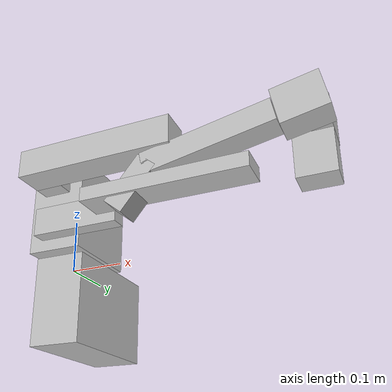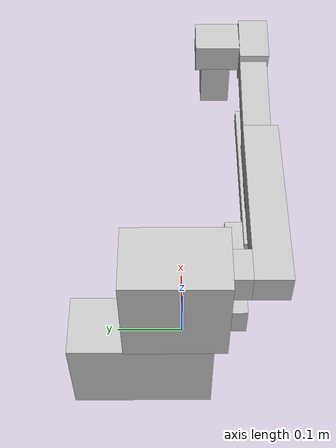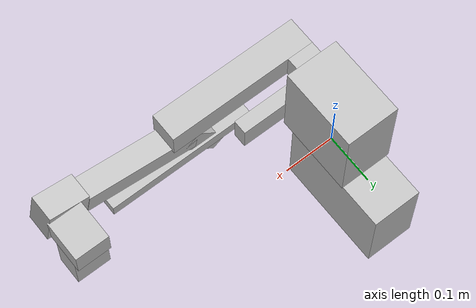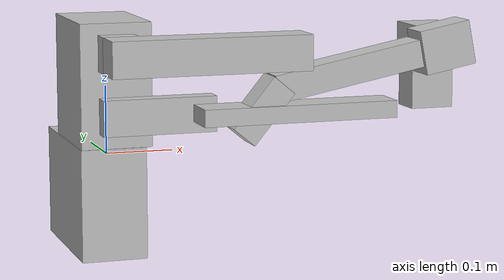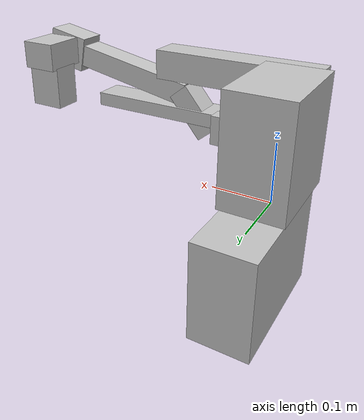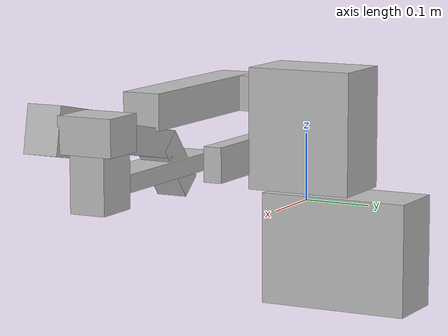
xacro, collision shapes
<?xml version="1.0"?>

<!-- When testing you can run this URDF. Previously I had to comment/uncomment on the macro.xacro, but now I have a standalone file-->
<!-- default values for properties should be "pure" for when its included in another xacro (ie. moveit) -->
<robot xmlns:xacro="http://www.ros.org/wiki/xacro" name="arm_400_v1">

    <xacro:include filename="$(find bam_descriptions)/urdf/common.xacro" />
    <xacro:include filename="$(find bam_descriptions)/urdf/arm_400_v1/arm_400_v1_macro.xacro" />
    <xacro:include filename="$(find bam_descriptions)/urdf/arm_400_v1/arm_400_v1.ros2_control.xacro"/>

    <xacro:arg name="plugin" default="none"/>  <!-- none, mock, gazebo, real -->
    <xacro:property name="plugin" value="$(arg plugin)" />

    <xacro:arg name="controllers_file_path" default=""/>
    <xacro:property name="controllers_file_path" value="$(arg controllers_file_path)"/>

    <xacro:arg name="ros_namespace" default="bam_GPU"/>
    <xacro:property name="ros_namespace" value="$(arg ros_namespace)"/>

    <xacro:arg name="transport_path" default=""/>
    <xacro:property name="transport_path" value="$(arg transport_path)" />

    <xacro:arg name="prefix" default=""/>
    <xacro:property name="prefix" value="$(arg prefix)" />

    <xacro:arg name="reflect" default="1"/>
    <xacro:property name="reflect" value="$(arg reflect)" />

    <xacro:arg name="config" default="default"/>
    <xacro:property name="config" value="$(arg config)" />

    <xacro:arg name="world_xyz" default="0 0 0"/>
    <xacro:property name="world_xyz" value="$(arg world_xyz)"/>

    <xacro:arg name="world_rpy" default="0 0 0"/>
    <xacro:property name="world_rpy" value="$(arg world_rpy)"/>

    <xacro:arg name="base_xyz" default="0 0 0"/>
    <xacro:property name="base_xyz" value="$(arg base_xyz)"/>

    <xacro:arg name="base_rpy" default="0 0 0"/>
    <xacro:property name="base_rpy" value="$(arg base_rpy)"/>

    <xacro:arg name="six_dof_mode" default="false"/>
    <xacro:property name="six_dof_mode" value="$(arg six_dof_mode)"/>

    <xacro:arg name="hand_type" default="none"/>
    <xacro:property name="hand_type" value="$(arg hand_type)"/>

    <!-- Attach to Gazebo World -->
    <link name="world"/>

    <joint name="world_to_base" type="fixed">
        <origin xyz="${world_xyz}" rpy="${world_rpy}"/>
        <parent link="world"/>
        <child link="base_link"/>
    </joint>

    <link name="base_link">
        <xacro:dummy_inertial/>
    </link>

    <joint name="base_link_joint" type="fixed">
        <origin xyz="${base_xyz}" rpy="${base_rpy}"/>
        <parent link="base_link"/>
        <child link="${prefix}base_link_1"/>
    </joint>

    <xacro:arm_400_v1 prefix="${prefix}" reflect="${reflect}" config="${config}" six_dof_mode="${six_dof_mode}"/>

    <xacro:if value="${plugin != 'none'}">
        <xacro:arm_400_v1_ros2_control
        prefix="${prefix}"
        transport_path="${transport_path}"
        plugin="${plugin}"
        hand_type="${hand_type}"
        controllers_file_path="${controllers_file_path}"
        ros_namespace="${ros_namespace}"/>
    </xacro:if>

    <xacro:if value="${hand_type != 'none'}">

        <joint name="hand_joint" type="fixed">
        <origin xyz="0 0 0" rpy="0.0 0.0 0.0"/>
        <parent link="${prefix}eef_frame"/>
        <child link="${prefix}eef_link_1"/>
        </joint>

        <xacro:include filename="$(find bam_descriptions)/urdf/crab_claw_v1/crab_claw_v1_macro.xacro"/>
        <xacro:crab_claw_v1 prefix="${prefix}" reflect="1"/>
    </xacro:if>

</robot>

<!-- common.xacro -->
<robot xmlns:xacro="http://www.ros.org/wiki/xacro">

  <xacro:property name="deg2rad" value="${pi/180}"/>
  <xacro:property name="rev2rad" value="${2*pi}"/>
  <xacro:property name="inch2m" value="${25.4/1000}"/>
  <xacro:property name="mm2m" value="${1/1000}"/>

  <xacro:macro name="cylinder_tube_link" params="name outer_radius inner_radius length density origin_offset mass=-1 material='StoglRobotics/LightGrey'">
    <!-- Length goes along z axis -->

      <link name="${name}">

        <xacro:if value="${mass == -1}">
          <xacro:property name="outer_area" value="${outer_radius * outer_radius * pi}"/>
          <xacro:property name="inner_area" value="${inner_radius * inner_radius * pi}"/>
          <xacro:property name="volume" value="${length * (outer_area - inner_area)}"/>
          <xacro:property name="mass" value="${volume * density}"/>
        </xacro:if>

        <visual>
          <origin xyz="0 0 ${origin_offset}" rpy="0 0 0"/>
          <geometry>
              <cylinder length="${length}" radius="${outer_radius}"/>
          </geometry>
          <material name="${material}"/>
        </visual>

        <collision>
          <origin xyz="0 0 ${origin_offset}" rpy="0 0 0"/>
          <geometry>
              <cylinder length="${length}" radius="${outer_radius}"/>
          </geometry>
        </collision>

        <xacro:cylinder_inertial length="${length}" outer_radius="${outer_radius}" inner_radius="${inner_radius}" mass="${mass}" origin_xyz="0 0 ${origin_offset}"/>

      </link>
  </xacro:macro>

  <xacro:macro name="rectangular_tube_link"
      params="name width length height wall_thickness density origin_offset mass=-1 material='StoglRobotics/LightGrey'"> -->

      <!-- Length goes along y, width goes along x, height goes along z -->

      <!-- length goes from hole to hole, while link_total_length goes from outer edge to outer edge. To center link around holes, add width/2 to both ends -->
      <xacro:if value="${mass == -1}">
        <xacro:property name="outer_area" value="${width * height}"/>
        <xacro:property name="inner_area" value="${(width - 2*wall_thickness) * (height - 2*wall_thickness)}"/>
        <xacro:property name="volume" value="${length * (outer_area - inner_area)}"/>
        <xacro:property name="mass" value="${volume * density}"/>
      </xacro:if>

      <link name="${name}">

        <!-- It may make more sense to have origin in center of thickness, but when you export as cade, usally is done from edge -->
        <visual>
            <origin xyz="0 ${origin_offset} ${height/2}" rpy="0 0 0"/>
            <geometry>
                <box size="${width} ${length} ${height}"/>
            </geometry>
            <material name="${material}"/>
        </visual>

        <collision>
            <origin xyz="0 ${origin_offset} ${height/2}" rpy="0 0 0"/>
            <geometry>
                <box size="${width} ${length} ${height}"/>
            </geometry>
        </collision>

        <xacro:solid_cuboid_inertial width="${width}" height="${length}" depth="${height}" mass="${mass}" origin_xyz="0 ${origin_offset} ${height/2}"/>
      </link>

  </xacro:macro>

  <xacro:macro name="rectangular_plate_link" params="name width length plate_thickness density origin_offset mass=-1 material='StoglRobotics/LightGrey'">
      <!-- Origin offset is usally length/2 or length/2 + width/2 + width/2  -->
      <!-- length goes from hole to hole, while link_total_length goes from outer edge to outer edge. To center link around holes, add width/2 to both ends -->

      <!-- Length goes along y, width goes along x, thickness goes along z -->

      <xacro:if value="${mass == -1}">
        <xacro:property name="volume" value="${length * width * plate_thickness}"/>
        <xacro:property name="mass" value="${volume * density}"/>
      </xacro:if>

      <!-- It may make more sense to have origin in center of thickness, but when you export as cade, usally is done from edge -->
      <link name="${name}">

      <visual>
          <origin xyz="0 ${origin_offset} ${plate_thickness/2}" rpy="0 0 0"/>
          <geometry>
              <box size="${width} ${length} ${plate_thickness}"/>
          </geometry>
          <material name="${material}"/>
      </visual>

      <collision>
          <origin xyz="0 ${origin_offset} ${plate_thickness/2}" rpy="0 0 0"/>
          <geometry>
              <box size="${width} ${length} ${plate_thickness}"/>
          </geometry>
      </collision>

      <xacro:solid_cuboid_inertial width="${width}" height="${length}" depth="${plate_thickness}" mass="${mass}" origin_xyz="0 ${origin_offset} ${plate_thickness/2}"/>
      </link>

  </xacro:macro>

  <!-- https://en.wikipedia.org/wiki/List_of_moments_of_inertia#:~:text=Solid%20cuboid%20of%20width -->
  <!-- Inertia properties for wrist_link, scoped to this macro only -->
  <!-- Width goes along x, height goes along y, depth goes along z -->
  <xacro:macro name="solid_cuboid_inertial" params="width height depth mass origin_xyz">
      <xacro:property name="inertia_xx" value="${(1/12) * mass * (height * height + depth * depth)}"/>
      <xacro:property name="inertia_yy" value="${(1/12) * mass * (width * width + depth * depth)}"/>
      <xacro:property name="inertia_zz" value="${(1/12) * mass * (width * width + height * height)}"/>
      <inertial>
          <origin xyz="${origin_xyz}"/>
          <mass value="${mass}"/>
          <inertia ixx="${inertia_xx}" ixy="0" ixz="0"
                    iyy="${inertia_yy}" iyz="0"
                    izz="${inertia_zz}"/>
      </inertial>
  </xacro:macro>

  <!-- https://en.wikipedia.org/wiki/List_of_moments_of_inertia#:~:text=%5D-,Solid%20cylinder%20of,-radius%20r%2C%20height -->
  <!-- Inertia properties for motor block, scoped to this macro only -->
  <!-- I initally thought it should be outer_radius - inner_radius, but actually a hollow cylinder should have a higher interia! as more mass further away -->
  <xacro:macro name="cylinder_inertial" params="length outer_radius mass origin_xyz inner_radius=0">
      <xacro:property name="inertia_xx" value="${(1/12) * mass * (3*(outer_radius*outer_radius + inner_radius*inner_radius) + length*length)}"/>
      <xacro:property name="inertia_yy" value="${(1/12) * mass * (3*(outer_radius*outer_radius + inner_radius*inner_radius) + length*length)}"/>
      <xacro:property name="inertia_zz" value="${0.5*mass*(outer_radius*outer_radius + inner_radius*inner_radius)}"/>
      <inertial>
          <origin xyz="${origin_xyz}"/>
          <mass value="${mass}"/>
          <inertia ixx="${inertia_xx}" ixy="0" ixz="0"
                    iyy="${inertia_yy}" iyz="0"
                    izz="${inertia_zz}"/>
      </inertial>
  </xacro:macro>

<xacro:macro name="dummy_inertial">
<!-- Super small interia to not effect dynamics and small rviz interia box -->
    <inertial>
        <mass value="0.0001"/>
        <origin xyz="0 0 0" rpy="0 0 0"/>
        <inertia
            ixx="0.001" ixy="0.00001" ixz="0.00001"
            iyy="0.001" iyz="0.00001"
            izz="0.001"/>
    </inertial>
</xacro:macro>

<xacro:macro name="dummy_link">

  <!-- Small visual box so that link can be turned off in rviz -->
  <visual>
    <origin xyz="0 0 0" rpy="0 0 0"/>
    <geometry>
      <box size="0.001 0.001 0.001"/>
    </geometry>
    <material name="transparent_gray">
      <color rgba="0.5 0.5 0.5 0.1"/>
    </material>
  </visual>

  <xacro:dummy_inertial/>

</xacro:macro>

  <material name="StoglRobotics/Violet">
    <color rgba="${102/255} ${46/255} ${145/255} 1.0"/>
    <ambient>1 0 0 1</ambient>
    <diffuse>1 0 0 1</diffuse>
    <specular>0.1 0.1 0.1 1</specular>
    <emissive>0 0 0 0</emissive>
  </material>

  <material name="StoglRobotics/DarkGrey">
    <color rgba="${51/255} ${51/255} ${51/255} 1.0"/>
    <ambient>1 0 0 1</ambient>
    <diffuse>1 0 0 1</diffuse>
    <specular>0.1 0.1 0.1 1</specular>
    <emissive>0 0 0 0</emissive>
  </material>

  <material name="StoglRobotics/LightGrey">
    <color rgba="${194/255} ${194/255} ${194/255} 1.0"/>
    <ambient>1 0 0 1</ambient>
    <diffuse>1 0 0 1</diffuse>
    <specular>0.1 0.1 0.1 1</specular>
    <emissive>0 0 0 0</emissive>
  </material>

  <material name="Ghost">
    <color rgba="${194/255} ${194/255} ${194/255} 0.5"/>
    <ambient>1 0 0 1</ambient>
    <diffuse>1 0 0 1</diffuse>
    <specular>0.1 0.1 0.1 1</specular>
    <emissive>0 0 0 0</emissive>
  </material>

  <material name="Black">
    <color rgba="${0/255} ${0/255} ${0/255} 1"/>
    <ambient>1 0 0 1</ambient>
    <diffuse>1 0 0 1</diffuse>
    <specular>0.1 0.1 0.1 1</specular>
    <emissive>0 0 0 0</emissive>
  </material>

  <material name="White">
    <color rgba="${255/255} ${255/255} ${255/255} 1"/>
    <ambient>1 0 0 1</ambient>
    <diffuse>1 0 0 1</diffuse>
    <specular>0.1 0.1 0.1 1</specular>
    <emissive>0 0 0 0</emissive>
  </material>

  <material name="Red">
    <color rgba="1.0 0.0 0.0 1.0"/>
    <ambient>1 0 0 1</ambient>
    <diffuse>1 0 0 1</diffuse>
    <specular>0.1 0.1 0.1 1</specular>
    <emissive>0 0 0 0</emissive>
  </material>

  <material name="Orange">
    <color rgba="1.0 0.55 0.0 1.0"/>
    <ambient>1 0.5 0 1</ambient>
    <diffuse>1 0.5 0 1</diffuse>
    <specular>0.1 0.1 0.1 1</specular>
    <emissive>0 0 0 0</emissive>
  </material>

  <material name="Yellow">
    <color rgba="1.0 1.0 0.0 1.0"/>
    <ambient>1 1 0 1</ambient>
    <diffuse>1 1 0 1</diffuse>
    <specular>0.1 0.1 0.1 1</specular>
    <emissive>0 0 0 0</emissive>
  </material>

  <material name="Green">
    <color rgba="0.0 1.0 0.0 1.0"/>
    <ambient>0 1 0 1</ambient>
    <diffuse>0 1 0 1</diffuse>
    <specular>0.1 0.1 0.1 1</specular>
    <emissive>0 0 0 0</emissive>
  </material>

  <material name="Blue">
    <color rgba="0.0 0.0 1.0 1.0"/>
    <ambient>0 0 1 1</ambient>
    <diffuse>0 0 1 1</diffuse>
    <specular>0.1 0.1 0.1 1</specular>
    <emissive>0 0 0 0</emissive>
  </material>

  <material name="Indigo">
    <color rgba="0.29 0.0 0.51 1.0"/>
    <ambient>0.25 0 0.45 1</ambient>
    <diffuse>0.25 0 0.45 1</diffuse>
    <specular>0.1 0.1 0.1 1</specular>
    <emissive>0 0 0 0</emissive>
  </material>

  <material name="Violet">
    <color rgba="0.56 0.0 1.0 1.0"/>
    <ambient>0.5 0 1 1</ambient>
    <diffuse>0.5 0 1 1</diffuse>
    <specular>0.1 0.1 0.1 1</specular>
    <emissive>0 0 0 0</emissive>
  </material>

</robot>

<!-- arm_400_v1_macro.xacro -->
<robot xmlns:xacro="http://wiki.ros.org/xacro" name="hybrid_v1_macro">

<!-- if include this here, there may be errors if included agian -->

<!-- When defining the joints, do as few rotations as possible, so its easy to orient back to base_link -->
<!-- Its better to not do any visual rotations, then the CAD values can be read directly, otherwise you may need to switch axises -->

 <!-- Notes on bool vs string https://github.com/ros/xacro/issues/145 -->
 <!-- Using "true"/"false" seemed buggy as sometimes its bool/str instead use config and pass a string -->

    <xacro:macro name="arm_400_v1" params="prefix='' reflect=1 config='default' six_dof_mode=false">

    <!-- I could do this, but it also nice way to make sure URDFs and kinematics are correct -->
    <xacro:property name="theta_elbow_offset" value="${70/180 * pi}"/>
    <xacro:property name="deg2rad" value="${pi/180}"/>
    <xacro:property name="rev2rad" value="${2*pi}"/>

    <!-- Joint Limits -->
    <!-- Use real hardstop values so KDL can optimise correctly -->
    <!-- Check bam_calibration config folder for values -->
    <xacro:property name="J1_upper" value="${90 * deg2rad}"/>
    <xacro:property name="J1_lower" value="${-90 * deg2rad}"/>

    <xacro:property name="J2_upper" value="${0.25 * rev2rad}"/>
    <xacro:property name="J2_lower" value="${-0.4 * rev2rad}"/>

    <!-- Small value so doesn't jam if starts at 0 -->
    <xacro:property name="J3_upper" value="${0 * deg2rad}"/>
    <xacro:property name="J3_lower" value="${-180 * deg2rad}"/>

    <!--shift limits so it makes more sense... with workspace-->
    <xacro:property name="J4_upper" value="${(175-90) * deg2rad}"/>
    <xacro:property name="J4_lower" value="${(-175-90) * deg2rad}"/>

    <xacro:property name="J5_upper" value="${175 * deg2rad}"/>
    <xacro:property name="J5_lower" value="${-175 * deg2rad}"/>

    <xacro:property name="J6_upper" value="${175 * deg2rad}"/>
    <xacro:property name="J6_lower" value="${-175 * deg2rad}"/>

    <xacro:property name="pos_reflect_1_neg_reflect_0" value="${(reflect+1)*0.5}"/>
    <xacro:property name="pos_reflect_0_neg_reflect_1" value="${(reflect-1)*-0.5}"/>

    <!-- SERIAL CHAIN - START -->

        <link name="${prefix}base_link_1">

            <visual>
                <geometry>
                    <mesh filename="package://bam_descriptions/urdf/arm_400_v1/meshes/base.stl"/>
                </geometry>
                <origin xyz="0.0 0.0 0.0" rpy="0 0 0"/>
                <material name="StoglRobotics/LightGrey"/>
            </visual>

            <collision>
                <origin xyz="0.000000 ${reflect * 0.064000} -0.067500" rpy="0 0 0"/>
                <geometry>
                    <box size="0.097000 0.225000 0.165000"/>
                </geometry>
            </collision>

            <inertial>
                <origin xyz="0.042714 0.091472 0.000374"/>
                <mass value="3.072182"/>
                <inertia
                    ixx="9.555000e-03" ixy="-2.573000e-03" ixz="-6.362259e-05"
                    iyy="6.963000e-03" iyz="-1.120315e-05"
                    izz="1.392000e-02"/>
            </inertial>

        </link>

        <joint name="${prefix}joint_1" type="revolute">
            <origin xyz="0 0 ${19/1000}" rpy="0 0 ${pi}"/>
            <parent link="${prefix}base_link_1"/>
            <child link="${prefix}shoulder_link_2"/>
            <axis xyz="0 0 1"/>
            <limit lower="${J1_lower}" upper="${J1_upper}" effort="50.0" velocity="100.0"/>
            <dynamics damping="0.05" friction="0.1"/>
        </joint>

        <!-- Relative to base_link_1, doesn't move with arm -->
        <link name="${prefix}planning_frame"/>

        <joint name="${prefix}joint_planning_frame" type="fixed">
            <origin xyz="0 0 ${156.50/1000}" rpy="0 ${pi/2} ${-pi} "/>
            <parent link="${prefix}base_link_1"/>
            <child link="${prefix}planning_frame"/>
        </joint>

        <link name="${prefix}shoulder_link_2">
            <visual>
                <geometry>
                    <mesh filename="package://bam_descriptions/urdf/arm_400_v1/meshes/shoulder.stl"/>
                </geometry>
                <origin rpy="0 0 ${pi*0}"/>
                <material name="StoglRobotics/LightGrey"/>
            </visual>

            <collision>
                <origin xyz="0.000000 -0.010423 0.090000" rpy="0 0 0"/>
                <geometry>
                    <box size="0.104000 0.158846 0.180000"/>
                </geometry>
            </collision>

            <inertial>
                <origin xyz="0.001942 -0.001158 0.090668"/>
                <mass value="5.469791"/>
                <inertia
                    ixx="2.272000e-02" ixy="7.822000e-04" ixz="-1.589000e-04"
                    iyy="1.876000e-02" iyz="2.229000e-04"
                    izz="1.471000e-02"/>
            </inertial>

        </link>

        <!-- Z offset goes upwards from J1, you can see it similar to the planning_frame, y offset goes perpendicular to axis of rotation to front surface of shoulder -->
        <joint name="${prefix}joint_2" type="revolute">
            <origin xyz="0 ${69/1000} ${137.5/1000}" rpy="${-pi/2} ${reflect*pi/2} 0"/>
            <parent link="${prefix}shoulder_link_2"/>
            <child link="${prefix}L1_link_3"/>
            <!-- Match direction of rotation of UR -->
            <axis xyz="0 0 -1"/>
            <limit lower="${J2_lower}" upper="${J2_upper}" effort="50.0" velocity="100.0"/>
            <dynamics damping="0.05" friction="0.1"/>
        </joint>

        <link name="${prefix}L1_link_3">
            <visual>
                <geometry>
                    <mesh filename="package://bam_descriptions/urdf/arm_400_v1/meshes/L1.stl"/>
                </geometry>
                <origin rpy="0 0 0"/>

                <material name="StoglRobotics/LightGrey"/>
            </visual>

            <collision>
                <origin xyz="0.000000 0.120000 0.057000" rpy="0 0 0"/>
                <geometry>
                    <box size="0.052000 0.292000 0.056000"/>
                </geometry>
            </collision>

            <collision>
                <origin xyz="0.000000 0.000000 0.014500" rpy="0 0 0"/>
                <geometry>
                    <box size="0.052000 0.052000 0.029000"/>
                </geometry>
            </collision>

            <inertial>
                <origin xyz="0.000000 0.107825 0.049767"/>
                <mass value="0.261468"/>
                <inertia
                    ixx="2.119000e-03" ixy="7.117000e-14" ixz="2.088000e-15"
                    iyy="2.967000e-04" iyz="-1.980000e-04"
                    izz="1.931000e-03"/>
            </inertial>

        </link>

        <joint name="${prefix}joint_3" type="revolute">
            <!-- Althought the limits are now lined up, the rotation is still around J2 Z which is point in the same direction, so + reflect*11*deg2rad -->
            <origin xyz="0 ${240/1000} ${(29+85)*0.5/1000}" rpy="${pos_reflect_1_neg_reflect_0 * pi} 0 ${(pos_reflect_1_neg_reflect_0 * pi) + reflect*11*deg2rad}"/>
            <!-- UPDATE YAW with elbow offset -->
            <parent link="${prefix}L1_link_3"/>
            <child link="${prefix}L2_link_4"/>
            <axis xyz="0 0 1"/>
            <limit lower="${J3_lower}" upper="${J3_upper}" effort="50.0" velocity="100.0"/>
            <dynamics damping="0.05" friction="0.1"/>
        </joint>

        <link name="${prefix}L2_link_4">
            <visual>
                <geometry>
                    <mesh filename="package://bam_descriptions/urdf/arm_400_v1/meshes/L2.stl"/>
                </geometry>
                <origin rpy="0 0 0"/>

                <material name="StoglRobotics/LightGrey"/>
            </visual>

            <collision>
                <origin xyz="-0.045781 0.077883 0.000000" rpy="0 0 0"/>
                <geometry>
                    <box size="0.040000 0.224437 0.046000"/>
                </geometry>
            </collision>

            <!-- Manually edited using values from fusion 360 -->
            <collision>
                <origin xyz="-0.071723 -0.059759 0.000000" rpy="0 0 ${(pi/180) * -39.46}"/>
                <geometry>
                    <box size="0.04 0.094 0.046000"/>
                </geometry>
            </collision>

            <inertial>
                <origin xyz="-0.046499 0.033892 0.000000"/>
                <mass value="0.272203"/>
                <inertia
                    ixx="2.392000e-03" ixy="-1.389000e-04" ixz="2.951000e-18"
                    iyy="2.708000e-04" iyz="8.125000e-18"
                    izz="2.422000e-03"/>
            </inertial>
        </link>

        <joint name="${prefix}wrist_fixed_joint" type="fixed">
        <!-- Add reflection here mabye... -->
        <!-- -6mm as 2 less plates-->
            <origin xyz="${-45.7942/1000} ${(190.0905-6)/1000} 0" rpy="${-pi/2} ${pi*pos_reflect_1_neg_reflect_0} 0"/>
            <parent link="${prefix}L2_link_4"/>
            <child link="${prefix}wrist_1_link"/>
        </joint>

        <link name="${prefix}wrist_1_link">
            <visual>
                <geometry>
                    <mesh filename="package://bam_descriptions/urdf/arm_400_v1/meshes/wrist.stl"/>
                </geometry>
                <origin rpy="0 0 0"/>

                <material name="StoglRobotics/LightGrey"/>
            </visual>
            <collision>
                <origin xyz="0.000040 -0.001210 0.046642" rpy="0 0 0"/>
                <geometry>
                    <box size="0.065042 0.050000 0.078000"/>
                </geometry>
            </collision>

            <inertial>
                <origin xyz="0.000040 -0.001210 0.046642"/>
                <mass value="0.222952"/>
                <inertia
                    ixx="9.525372e-05" ixy="3.917645e-07" ixz="9.418994e-07"
                    iyy="1.185000e-04" iyz="1.182385e-06"
                    izz="6.496432e-05"/>
            </inertial>
        </link>

        <joint name="${prefix}joint_4" type="revolute">
        <!-- Add reflection here mabye... -->
            <origin xyz="0 ${13.5/1000} ${51.5/1000}" rpy="${-pi/2} ${-pi/2 + 11*deg2rad} 0"/>
            <parent link="${prefix}wrist_1_link"/>
            <child link="${prefix}wrist_2_link_5"/>
            <axis xyz="0 0 1"/>
            <limit lower="${J4_lower}" upper="${J4_upper}" effort="50.0" velocity="100.0"/>
            <dynamics damping="0.05" friction="0.1"/>
        </joint>

        <link name="${prefix}wrist_2_link_5">
            <visual>
                <geometry>
                    <mesh filename="package://bam_descriptions/urdf/arm_400_v1/meshes/wrist.stl"/>
                </geometry>
                <origin rpy="0 0 0"/>

                <material name="StoglRobotics/LightGrey"/>
            </visual>

            <collision>
                <origin xyz="0.000040 -0.001210 0.046642" rpy="0 0 0"/>
                <geometry>
                    <box size="0.065042 0.050000 0.078000"/>
                </geometry>
            </collision>

            <inertial>
                <origin xyz="0.000040 -0.001210 0.046642"/>
                <mass value="0.222952"/>
                <inertia
                    ixx="9.525372e-05" ixy="3.917645e-07" ixz="9.418994e-07"
                    iyy="1.185000e-04" iyz="1.182385e-06"
                    izz="6.496432e-05"/>
            </inertial>
        </link>

        <joint name="${prefix}joint_5" type="revolute">
        <!-- Add reflection here mabye... -->
            <origin xyz="0 ${13.5/1000} ${51.5/1000}" rpy="${-pi/2} ${reflect * pi} 0"/>
            <!-- changing pitch from - to + changes direction of wrist... -->
            <parent link="${prefix}wrist_2_link_5"/>
            <child link="${prefix}wrist_3_link_6"/>
            <axis xyz="0 0 1"/>
            <limit lower="${J5_lower}" upper="${J5_upper}" effort="50.0" velocity="100.0"/>
            <dynamics damping="0.05" friction="0.1"/>
        </joint>

        <link name="${prefix}wrist_3_link_6">
            <visual>
                <geometry>
                    <mesh filename="package://bam_descriptions/urdf/arm_400_v1/meshes/wrist.stl"/>
                </geometry>
                <origin rpy="0 0 0"/>
                <!-- flip this to change direction -->
                <!-- Nope bad idea! then it all starts to change.. -->

                <material name="StoglRobotics/LightGrey"/>
            </visual>

            <collision>
                <origin xyz="0.000040 -0.001210 0.046642" rpy="0 0 0"/>
                <geometry>
                    <box size="0.065042 0.050000 0.078000"/>
                </geometry>
            </collision>

            <inertial>
                <origin xyz="0.000040 -0.001210 0.046642"/>
                <mass value="0.222952"/>
                <inertia
                    ixx="9.525372e-05" ixy="3.917645e-07" ixz="9.418994e-07"
                    iyy="1.185000e-04" iyz="1.182385e-06"
                    izz="6.496432e-05"/>
            </inertial>

        </link>

        <joint name="${prefix}joint_6" type="revolute">
        <!-- Add reflection here mabye... -->
            <origin xyz="0 ${13.5/1000} ${51.5/1000}" rpy="${-pi/2} 0 0"/>
            <parent link="${prefix}wrist_3_link_6"/>
            <child link="${prefix}eef_frame"/>
            <axis xyz="0 0 1"/>
            <limit lower="${J6_lower}" upper="${J6_upper}" effort="50.0" velocity="100.0"/>
            <dynamics damping="0.05" friction="0.1"/>
        </joint>

        <link name="${prefix}eef_frame">
            <xacro:dummy_inertial/>
        </link>

        <!-- https://github.com/ros-industrial/universal_robot/pull/506/files -->
        <joint name="${prefix}ee_fixed_joint" type="fixed">
            <parent link="${prefix}eef_frame" />
            <child link="${prefix}ee_link" />
            <origin xyz="0 0 0" rpy="0.0 ${-pi/2.0} ${pi/2.0}" />
        </joint>

        <link name="${prefix}ee_link">
            <xacro:dummy_inertial/>
        </link>

    <!-- SERIAL CHAIN - END -->

    <!-- PARALLEL LINKS - START -->

    <xacro:unless value="${six_dof_mode}">
        <joint name="${prefix}joint_c1" type="revolute">
                    <!-- L1 Joint -->

                    <origin xyz="0 ${69/1000} ${50.5/1000}" rpy="${-pi/2} ${reflect*pi/2} 0"/>
                    <parent link="${prefix}shoulder_link_2"/>
                    <child link="${prefix}C1_link"/>
                    <axis xyz="0 0 -1"/>
                    <limit lower="-${pi}" upper="${pi}" effort="50.0" velocity="100.0"/>
                    <dynamics damping="0.05" friction="0.1"/>
                </joint>

        <link name="${prefix}C1_link">
            <visual>
                <geometry>
                    <mesh filename="package://bam_descriptions/urdf/arm_400_v1/meshes/C1.stl"/>
                </geometry>
                <origin rpy="0 0 0"/>

                <material name="StoglRobotics/LightGrey"/>
            </visual>
            <collision>
                <origin xyz="0.002885 0.057527 0.013000" rpy="0 0 0"/>
                <geometry>
                    <box size="0.052000 0.166000 0.028000"/>
                </geometry>
            </collision>

            <inertial>
                <origin xyz="0.002885 0.057527 0.013000"/>
                <mass value="0.112422"/>
                <inertia
                    ixx="2.678000e-04" ixy="-7.943692e-06" ixz="2.790000e-18"
                    iyy="3.386082e-05" iyz="1.901000e-17"
                    izz="2.717000e-04"/>
            </inertial>
        </link>

        <joint name="${prefix}joint_c2" type="revolute">
            <origin xyz="0 ${120/1000} ${(26+3)/1000}" rpy="0 0 0"/>
            <parent link="${prefix}C1_link"/>
            <child link="${prefix}C2_link"/>
            <axis xyz="0 0 -1"/>
            <limit lower="${-pi}" upper="${pi}" effort="50.0" velocity="100.0"/>
            <dynamics damping="0.05" friction="0.1"/>
        </joint>

        <link name="${prefix}C2_link">
            <visual>
                <geometry>
                    <mesh filename="package://bam_descriptions/urdf/arm_400_v1/meshes/C2.stl"/>
                </geometry>
                <origin rpy="0 0 0"/>

                <material name="StoglRobotics/LightGrey"/>
            </visual>

            <collision>
                <origin xyz="0.000000 0.130373 0.027917" rpy="0 0 0"/>
                <geometry>
                    <box size="0.025000 0.290000 0.056000"/>
                </geometry>
            </collision>

            <inertial>
                <origin xyz="0.000000 0.130373 0.027917"/>
                <mass value="0.114448"/>
                <inertia
                    ixx="8.608000e-04" ixy="7.377000e-16" ixz="2.464000e-17"
                    iyy="8.430406e-05" iyz="-1.239561e-06"
                    izz="7.881000e-04"/>
            </inertial>
        </link>

        <joint name="${prefix}C2_coupler_joint" type="fixed">
            <origin xyz="0 ${265/1000} ${(56/2)/1000}" rpy="0 0 0"/>
            <parent link="${prefix}C2_link"/>
            <child link="${prefix}C2_coupler"/>
        </joint>

        <link name="${prefix}C2_coupler">
            <xacro:dummy_inertial/>
        </link>

        <joint name="${prefix}L2_coupler_joint" type="fixed">
            <origin xyz="${-67.1031/1000} ${-99.4845/1000} 0" rpy="0 0 0"/>
            <parent link="${prefix}L2_link_4"/>
            <child link="${prefix}L2_coupler"/>
        </joint>

        <link name="${prefix}L2_coupler">
            <xacro:dummy_inertial/>
        </link>

    </xacro:unless>
    <!-- PARALLEL LINKS - END -->

    </xacro:macro>

    <!-- Standardized alias: make_arm (config_file currently ignored) -->
    <xacro:macro name="make_arm" params="config_file:=''">
        <xacro:arm_400_v1 prefix="" reflect="1" config="default" six_dof_mode="false"/>
    </xacro:macro>

</robot>
